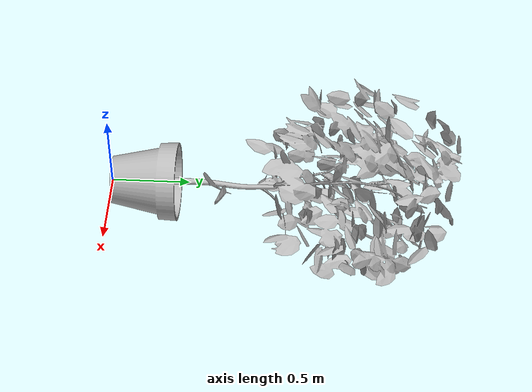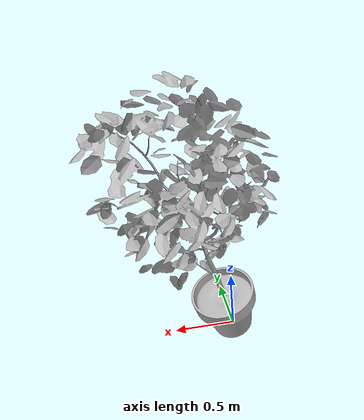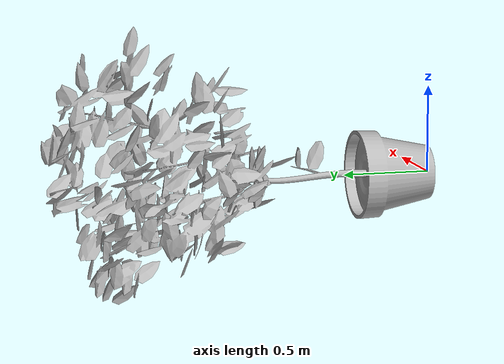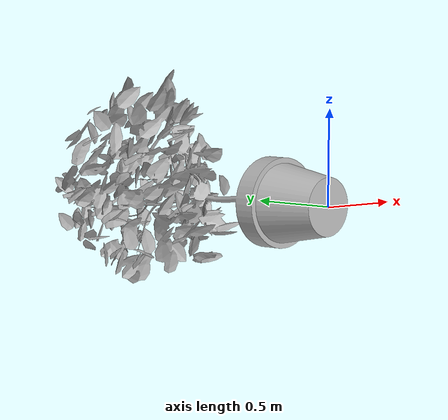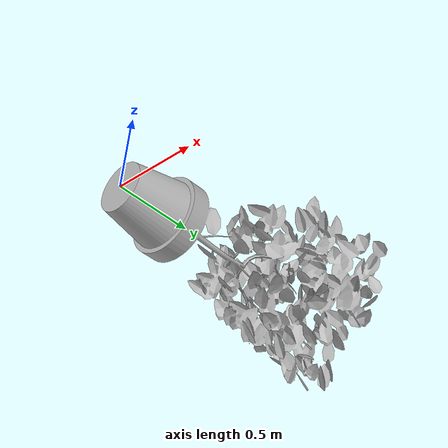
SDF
<?xml version="1.0" ?>
<sdf version="1.4">
    <model name="tree_large_l">
<!-- pose is supposed to be passed from world file -->
      <static>true</static>
      <link name="body">
        <visual name="visual">
          <geometry>
            <mesh><uri>model://tree_large_l/tree_small.dae</uri></mesh>
          </geometry>
        </visual>
        <collision name="tree_large_l">
          <pose>0 0.215 0 1.5708 0 0</pose>
          <geometry>
            <cylinder>
              <radius>.295</radius>
              <length>.43</length>
            </cylinder>
          </geometry>
          <surface>
            <friction>
              <ode>
                <mu>100</mu>
                <mu2>50</mu2>
              </ode>
            </friction>
          </surface>
        </collision>
      </link>
    </model>
</sdf>
